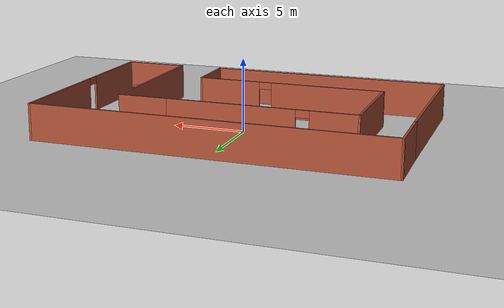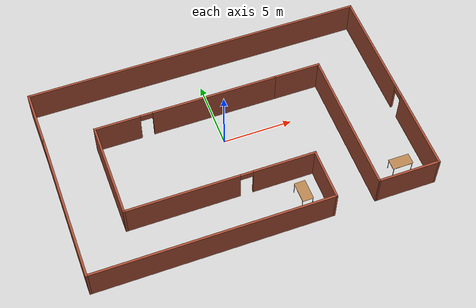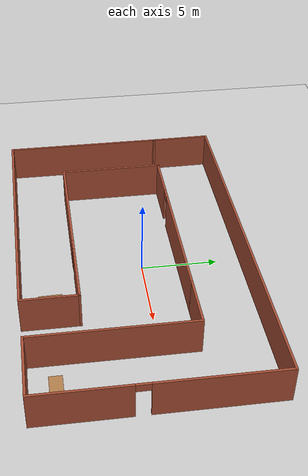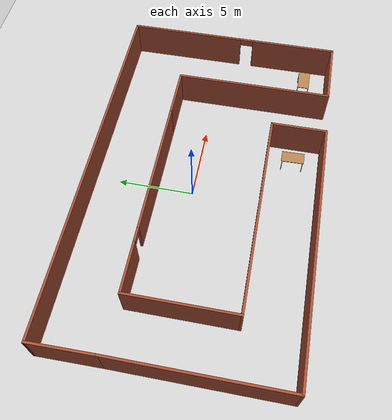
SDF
<sdf version="1.6">
 <world name="default">
  <model name="ground_plane">
   <static>1</static>
   <link name="link">
    <collision name="collision">
     <geometry><plane><normal>0 0 1</normal><size>100 100</size></plane></geometry>
     <surface><friction><ode><mu>100</mu><mu2>50</mu2></ode></friction></surface>
    </collision>
    <visual name="visual">
     <cast_shadows>0</cast_shadows>
     <geometry><plane><normal>0 0 1</normal><size>100 100</size></plane></geometry>
     <material>
      <script><uri>file://media/materials/scripts/gazebo.material</uri><name>Gazebo/Grey</name></script>
     </material>
    </visual>
   </link>
  </model>
  <model name="SimpleHall">
   <pose>0.140591 -0.722234 0 0 -0 0</pose>
   <link name="Wall_10">
    <collision name="Wall_10_Collision">
     <geometry><box><size>10.8724 0.15 2.5</size></box></geometry>
     <pose>0 0 1.25 0 -0 0</pose>
    </collision>
    <visual name="Wall_10_Visual">
     <pose>0 0 1.25 0 -0 0</pose>
     <geometry><box><size>10.8724 0.15 2.5</size></box></geometry>
     <material>
      <script><uri>file://media/materials/scripts/gazebo.material</uri><name>Gazebo/Bricks</name></script>
      <ambient>1 1 1 1</ambient>
     </material>
     <meta><layer>0</layer></meta>
    </visual>
    <pose>-12.1245 -1.98928 0 0 -0 -1.5708</pose>
   </link>
   <link name="Wall_11">
    <collision name="Wall_11_Collision">
     <geometry><box><size>17 0.15 2.5</size></box></geometry>
     <pose>0 0 1.25 0 -0 0</pose>
    </collision>
    <visual name="Wall_11_Visual">
     <pose>0 0 1.25 0 -0 0</pose>
     <geometry><box><size>17 0.15 2.5</size></box></geometry>
     <material>
      <script><uri>file://media/materials/scripts/gazebo.material</uri><name>Gazebo/Bricks</name></script>
      <ambient>1 1 1 1</ambient>
     </material>
     <meta><layer>0</layer></meta>
    </visual>
    <pose>-3.69954 -7.35046 0 0 -0 0</pose>
   </link>
   <link name="Wall_12">
    <collision name="Wall_12_Collision">
     <geometry><box><size>3.75 0.15 2.5</size></box></geometry>
     <pose>0 0 1.25 0 -0 0</pose>
    </collision>
    <visual name="Wall_12_Visual">
     <pose>0 0 1.25 0 -0 0</pose>
     <geometry><box><size>3.75 0.15 2.5</size></box></geometry>
     <material>
      <script><uri>file://media/materials/scripts/gazebo.material</uri><name>Gazebo/Bricks</name></script>
      <ambient>1 1 1 1</ambient>
     </material>
     <meta><layer>0</layer></meta>
    </visual>
    <pose>4.72546 -5.55046 0 0 -0 1.5708</pose>
   </link>
   <link name="Wall_13">
    <pose>-1.94954 -3.75046 0 0 -0 3.14159</pose>
    <visual name="Wall_13_Visual_0">
     <pose>-4.49424 0 1.25 0 -0 0</pose>
     <geometry><box><size>4.51153 0.15 2.5</size></box></geometry>
     <material>
      <script><uri>file://media/materials/scripts/gazebo.material</uri><name>Gazebo/Bricks</name></script>
      <ambient>1 1 1 1</ambient>
     </material>
     <meta><layer>0</layer></meta>
    </visual>
    <collision name="Wall_13_Collision_0">
     <geometry><box><size>4.51153 0.15 2.5</size></box></geometry>
     <pose>-4.49424 0 1.25 0 -0 0</pose>
    </collision>
    <visual name="Wall_13_Visual_1">
     <pose>2.70576 0 1.25 0 -0 0</pose>
     <geometry><box><size>8.08847 0.15 2.5</size></box></geometry>
     <material>
      <script><uri>file://media/materials/scripts/gazebo.material</uri><name>Gazebo/Bricks</name></script>
      <ambient>1 1 1 1</ambient>
     </material>
     <meta><layer>0</layer></meta>
    </visual>
    <collision name="Wall_13_Collision_1">
     <geometry><box><size>8.08847 0.15 2.5</size></box></geometry>
     <pose>2.70576 0 1.25 0 -0 0</pose>
    </collision>
    <visual name="Wall_13_Visual_2">
     <pose>-1.78847 0 2.25 0 -0 0</pose>
     <geometry><box><size>0.9 0.15 0.5</size></box></geometry>
     <material>
      <script><uri>file://media/materials/scripts/gazebo.material</uri><name>Gazebo/Bricks</name></script>
      <ambient>1 1 1 1</ambient>
     </material>
     <meta><layer>0</layer></meta>
    </visual>
    <collision name="Wall_13_Collision_2">
     <geometry><box><size>0.9 0.15 0.5</size></box></geometry>
     <pose>-1.78847 0 2.25 0 -0 0</pose>
    </collision>
   </link>
   <link name="Wall_14">
    <collision name="Wall_14_Collision">
     <geometry><box><size>7 0.15 2.5</size></box></geometry>
     <pose>0 0 1.25 0 -0 0</pose>
    </collision>
    <visual name="Wall_14_Visual">
     <pose>0 0 1.25 0 -0 0</pose>
     <geometry><box><size>7 0.15 2.5</size></box></geometry>
     <material>
      <script><uri>file://media/materials/scripts/gazebo.material</uri><name>Gazebo/Bricks</name></script>
      <ambient>1 1 1 1</ambient>
     </material>
     <meta><layer>0</layer></meta>
    </visual>
    <pose>-8.62454 -0.325461 0 0 -0 1.5708</pose>
   </link>
   <link name="Wall_15">
    <pose>-2.07454 3.09954 0 0 -0 0</pose>
    <visual name="Wall_15_Visual_0">
     <pose>-4.98035 0 1.25 0 -0 0</pose>
     <geometry><box><size>3.2893 0.15 2.5</size></box></geometry>
     <material>
      <script><uri>file://media/materials/scripts/gazebo.material</uri><name>Gazebo/Bricks</name></script>
      <ambient>1 1 1 1</ambient>
     </material>
     <meta><layer>0</layer></meta>
    </visual>
    <collision name="Wall_15_Collision_0">
     <geometry><box><size>3.2893 0.15 2.5</size></box></geometry>
     <pose>-4.98035 0 1.25 0 -0 0</pose>
    </collision>
    <visual name="Wall_15_Visual_1">
     <pose>2.09465 0 1.25 0 -0 0</pose>
     <geometry><box><size>9.0607 0.15 2.5</size></box></geometry>
     <material>
      <script><uri>file://media/materials/scripts/gazebo.material</uri><name>Gazebo/Bricks</name></script>
      <ambient>1 1 1 1</ambient>
     </material>
     <meta><layer>0</layer></meta>
    </visual>
    <collision name="Wall_15_Collision_1">
     <geometry><box><size>9.0607 0.15 2.5</size></box></geometry>
     <pose>2.09465 0 1.25 0 -0 0</pose>
    </collision>
    <visual name="Wall_15_Visual_2">
     <pose>-2.8857 0 2.25 0 -0 0</pose>
     <geometry><box><size>0.9 0.15 0.5</size></box></geometry>
     <material>
      <script><uri>file://media/materials/scripts/gazebo.material</uri><name>Gazebo/Bricks</name></script>
      <ambient>1 1 1 1</ambient>
     </material>
     <meta><layer>0</layer></meta>
    </visual>
    <collision name="Wall_15_Collision_2">
     <geometry><box><size>0.9 0.15 0.5</size></box></geometry>
     <pose>-2.8857 0 2.25 0 -0 0</pose>
    </collision>
   </link>
   <link name="Wall_16">
    <collision name="Wall_16_Collision">
     <geometry><box><size>3.5 0.15 2.5</size></box></geometry>
     <pose>0 0 1.25 0 -0 0</pose>
    </collision>
    <visual name="Wall_16_Visual">
     <pose>0 0 1.25 0 -0 0</pose>
     <geometry><box><size>3.5 0.15 2.5</size></box></geometry>
     <material>
      <script><uri>file://media/materials/scripts/gazebo.material</uri><name>Gazebo/Bricks</name></script>
      <ambient>1 1 1 1</ambient>
     </material>
     <meta><layer>0</layer></meta>
    </visual>
    <pose>6.15046 3.09954 0 0 -0 0</pose>
   </link>
   <link name="Wall_17">
    <collision name="Wall_17_Collision">
     <geometry><box><size>10.5 0.15 2.5</size></box></geometry>
     <pose>0 0 1.25 0 -0 0</pose>
    </collision>
    <visual name="Wall_17_Visual">
     <pose>0 0 1.25 0 -0 0</pose>
     <geometry><box><size>10.5 0.15 2.5</size></box></geometry>
     <material>
      <script><uri>file://media/materials/scripts/gazebo.material</uri><name>Gazebo/Bricks</name></script>
      <ambient>1 1 1 1</ambient>
     </material>
     <meta><layer>0</layer></meta>
    </visual>
    <pose>7.82546 -2.07546 0 0 -0 -1.5708</pose>
   </link>
   <link name="Wall_18">
    <collision name="Wall_18_Collision">
     <geometry><box><size>4.5 0.15 2.5</size></box></geometry>
     <pose>0 0 1.25 0 -0 0</pose>
    </collision>
    <visual name="Wall_18_Visual">
     <pose>0 0 1.25 0 -0 0</pose>
     <geometry><box><size>4.5 0.15 2.5</size></box></geometry>
     <material>
      <script><uri>file://media/materials/scripts/gazebo.material</uri><name>Gazebo/Bricks</name></script>
      <ambient>1 1 1 1</ambient>
     </material>
     <meta><layer>0</layer></meta>
    </visual>
    <pose>10.0005 -7.25046 0 0 -0 0</pose>
   </link>
   <link name="Wall_19">
    <pose>12.1755 0.049539 0 0 -0 1.5708</pose>
    <visual name="Wall_19_Visual_0">
     <pose>-4.42909 0 1.25 0 -0 0</pose>
     <geometry><box><size>5.89183 0.15 2.5</size></box></geometry>
     <material>
      <script><uri>file://media/materials/scripts/gazebo.material</uri><name>Gazebo/Bricks</name></script>
      <ambient>1 1 1 1</ambient>
     </material>
     <meta><layer>0</layer></meta>
    </visual>
    <collision name="Wall_19_Collision_0">
     <geometry><box><size>5.89183 0.15 2.5</size></box></geometry>
     <pose>-4.42909 0 1.25 0 -0 0</pose>
    </collision>
    <visual name="Wall_19_Visual_1">
     <pose>3.39591 0 1.25 0 -0 0</pose>
     <geometry><box><size>7.95817 0.15 2.5</size></box></geometry>
     <material>
      <script><uri>file://media/materials/scripts/gazebo.material</uri><name>Gazebo/Bricks</name></script>
      <ambient>1 1 1 1</ambient>
     </material>
     <meta><layer>0</layer></meta>
    </visual>
    <collision name="Wall_19_Collision_1">
     <geometry><box><size>7.95817 0.15 2.5</size></box></geometry>
     <pose>3.39591 0 1.25 0 -0 0</pose>
    </collision>
    <visual name="Wall_19_Visual_2">
     <pose>-1.03317 0 2.25 0 -0 0</pose>
     <geometry><box><size>0.9 0.15 0.5</size></box></geometry>
     <material>
      <script><uri>file://media/materials/scripts/gazebo.material</uri><name>Gazebo/Bricks</name></script>
      <ambient>1 1 1 1</ambient>
     </material>
     <meta><layer>0</layer></meta>
    </visual>
    <collision name="Wall_19_Collision_2">
     <geometry><box><size>0.9 0.15 0.5</size></box></geometry>
     <pose>-1.03317 0 2.25 0 -0 0</pose>
    </collision>
   </link>
   <link name="Wall_20">
    <collision name="Wall_20_Collision">
     <geometry><box><size>24.5 0.15 2.5</size></box></geometry>
     <pose>0 0 1.25 0 -0 0</pose>
    </collision>
    <visual name="Wall_20_Visual">
     <pose>0 0 1.25 0 -0 0</pose>
     <geometry><box><size>24.5 0.15 2.5</size></box></geometry>
     <material>
      <script><uri>file://media/materials/scripts/gazebo.material</uri><name>Gazebo/Bricks</name></script>
      <ambient>1 1 1 1</ambient>
     </material>
     <meta><layer>0</layer></meta>
    </visual>
    <pose>0.000462 7.34954 0 0 -0 3.14159</pose>
   </link>
   <link name="Wall_21">
    <collision name="Wall_21_Collision">
     <geometry><box><size>4.18913 0.15 2.5</size></box></geometry>
     <pose>0 0 1.25 0 -0 0</pose>
    </collision>
    <visual name="Wall_21_Visual">
     <pose>0 0 1.25 0 -0 0</pose>
     <geometry><box><size>4.18913 0.15 2.5</size></box></geometry>
     <material>
      <script><uri>file://media/materials/scripts/gazebo.material</uri><name>Gazebo/Bricks</name></script>
      <ambient>1 1 1 1</ambient>
     </material>
     <meta><layer>0</layer></meta>
    </visual>
    <pose>-12.1495 5.33013 0 0 -0 -1.55842</pose>
   </link>
   <static>1</static>
  </model>
  <model name="table">
   <static>1</static>
   <link name="link">
    <collision name="surface">
     <pose>0 0 1 0 -0 0</pose>
     <geometry><box><size>1.5 0.8 0.03</size></box></geometry>
     <surface><friction><ode><mu>0.6</mu><mu2>0.6</mu2></ode></friction></surface>
    </collision>
    <visual name="visual1">
     <pose>0 0 1 0 -0 0</pose>
     <geometry><box><size>1.5 0.8 0.03</size></box></geometry>
     <material>
      <script><uri>file://media/materials/scripts/gazebo.material</uri><name>Gazebo/Wood</name></script>
     </material>
    </visual>
    <collision name="front_left_leg">
     <pose>0.68 0.38 0.5 0 -0 0</pose>
     <geometry><cylinder><radius>0.02</radius><length>1</length></cylinder></geometry>
    </collision>
    <visual name="front_left_leg">
     <pose>0.68 0.38 0.5 0 -0 0</pose>
     <geometry><cylinder><radius>0.02</radius><length>1</length></cylinder></geometry>
     <material>
      <script><uri>file://media/materials/scripts/gazebo.material</uri><name>Gazebo/Grey</name></script>
     </material>
    </visual>
    <collision name="front_right_leg">
     <pose>0.68 -0.38 0.5 0 -0 0</pose>
     <geometry><cylinder><radius>0.02</radius><length>1</length></cylinder></geometry>
    </collision>
    <visual name="front_right_leg">
     <pose>0.68 -0.38 0.5 0 -0 0</pose>
     <geometry><cylinder><radius>0.02</radius><length>1</length></cylinder></geometry>
     <material>
      <script><uri>file://media/materials/scripts/gazebo.material</uri><name>Gazebo/Grey</name></script>
     </material>
    </visual>
    <collision name="back_right_leg">
     <pose>-0.68 -0.38 0.5 0 -0 0</pose>
     <geometry><cylinder><radius>0.02</radius><length>1</length></cylinder></geometry>
    </collision>
    <visual name="back_right_leg">
     <pose>-0.68 -0.38 0.5 0 -0 0</pose>
     <geometry><cylinder><radius>0.02</radius><length>1</length></cylinder></geometry>
     <material>
      <script><uri>file://media/materials/scripts/gazebo.material</uri><name>Gazebo/Grey</name></script>
     </material>
    </visual>
    <collision name="back_left_leg">
     <pose>-0.68 0.38 0.5 0 -0 0</pose>
     <geometry><cylinder><radius>0.02</radius><length>1</length></cylinder></geometry>
    </collision>
    <visual name="back_left_leg">
     <pose>-0.68 0.38 0.5 0 -0 0</pose>
     <geometry><cylinder><radius>0.02</radius><length>1</length></cylinder></geometry>
     <material>
      <script><uri>file://media/materials/scripts/gazebo.material</uri><name>Gazebo/Grey</name></script>
     </material>
    </visual>
   </link>
   <pose>3.4249 -6.19696 0 0 0 -1.55256</pose>
  </model>
  <model name="table_clone">
   <static>1</static>
   <link name="link">
    <collision name="surface">
     <pose>0 0 1 0 -0 0</pose>
     <geometry><box><size>1.5 0.8 0.03</size></box></geometry>
     <surface><friction><ode><mu>0.6</mu><mu2>0.6</mu2></ode></friction></surface>
    </collision>
    <visual name="visual1">
     <pose>0 0 1 0 -0 0</pose>
     <geometry><box><size>1.5 0.8 0.03</size></box></geometry>
     <material>
      <script><uri>file://media/materials/scripts/gazebo.material</uri><name>Gazebo/Wood</name></script>
     </material>
    </visual>
    <collision name="front_left_leg">
     <pose>0.68 0.38 0.5 0 -0 0</pose>
     <geometry><cylinder><radius>0.02</radius><length>1</length></cylinder></geometry>
    </collision>
    <visual name="front_left_leg">
     <pose>0.68 0.38 0.5 0 -0 0</pose>
     <geometry><cylinder><radius>0.02</radius><length>1</length></cylinder></geometry>
     <material>
      <script><uri>file://media/materials/scripts/gazebo.material</uri><name>Gazebo/Grey</name></script>
     </material>
    </visual>
    <collision name="front_right_leg">
     <pose>0.68 -0.38 0.5 0 -0 0</pose>
     <geometry><cylinder><radius>0.02</radius><length>1</length></cylinder></geometry>
    </collision>
    <visual name="front_right_leg">
     <pose>0.68 -0.38 0.5 0 -0 0</pose>
     <geometry><cylinder><radius>0.02</radius><length>1</length></cylinder></geometry>
     <material>
      <script><uri>file://media/materials/scripts/gazebo.material</uri><name>Gazebo/Grey</name></script>
     </material>
    </visual>
    <collision name="back_right_leg">
     <pose>-0.68 -0.38 0.5 0 -0 0</pose>
     <geometry><cylinder><radius>0.02</radius><length>1</length></cylinder></geometry>
    </collision>
    <visual name="back_right_leg">
     <pose>-0.68 -0.38 0.5 0 -0 0</pose>
     <geometry><cylinder><radius>0.02</radius><length>1</length></cylinder></geometry>
     <material>
      <script><uri>file://media/materials/scripts/gazebo.material</uri><name>Gazebo/Grey</name></script>
     </material>
    </visual>
    <collision name="back_left_leg">
     <pose>-0.68 0.38 0.5 0 -0 0</pose>
     <geometry><cylinder><radius>0.02</radius><length>1</length></cylinder></geometry>
    </collision>
    <visual name="back_left_leg">
     <pose>-0.68 0.38 0.5 0 -0 0</pose>
     <geometry><cylinder><radius>0.02</radius><length>1</length></cylinder></geometry>
     <material>
      <script><uri>file://media/materials/scripts/gazebo.material</uri><name>Gazebo/Grey</name></script>
     </material>
    </visual>
   </link>
   <pose>10.5216 -6.29386 0 0 -0 0.002873</pose>
  </model>
 </world>
</sdf>
